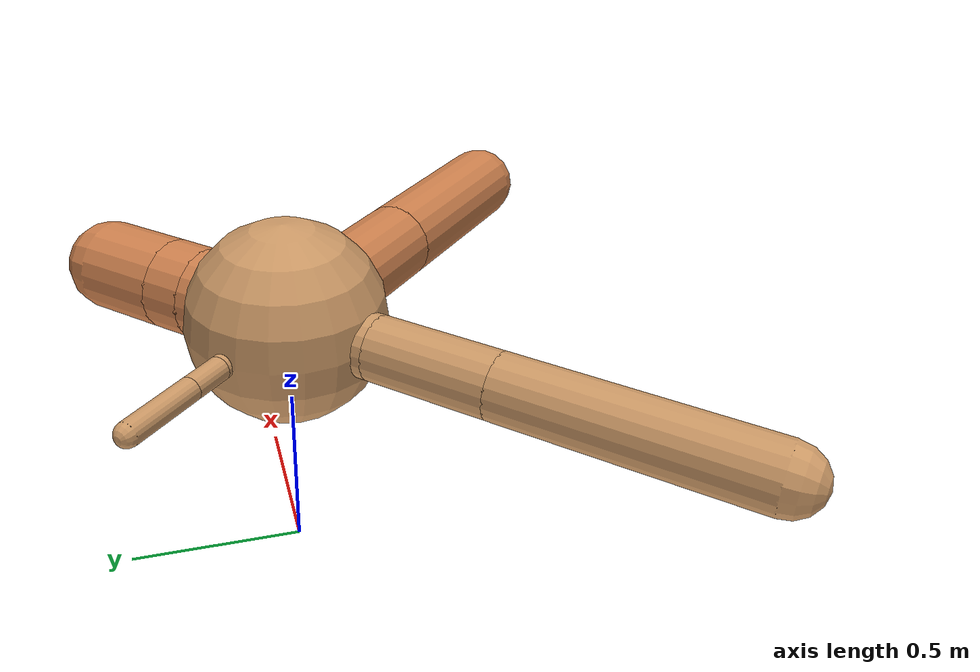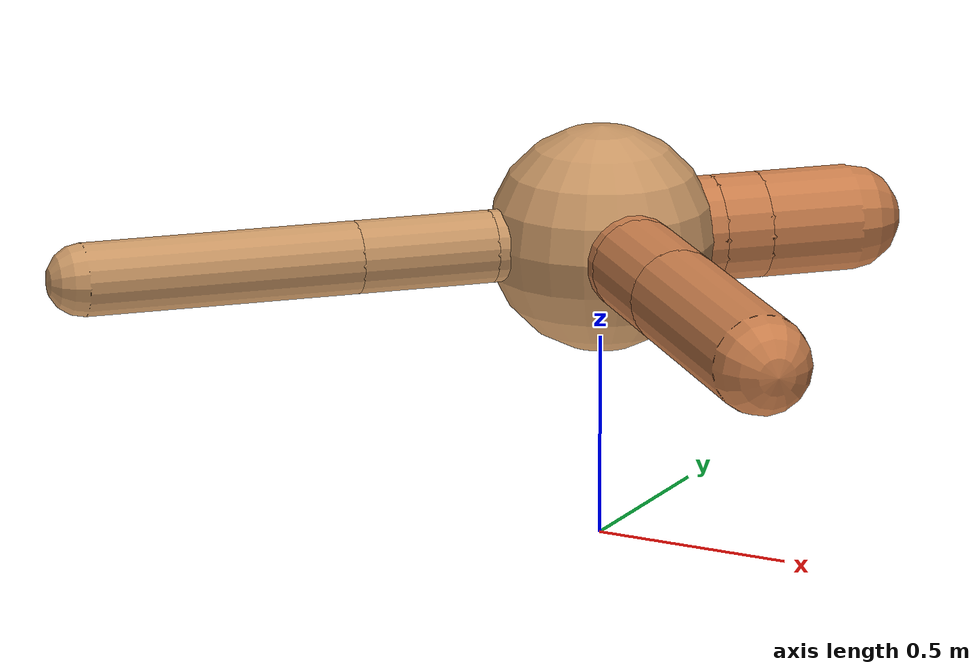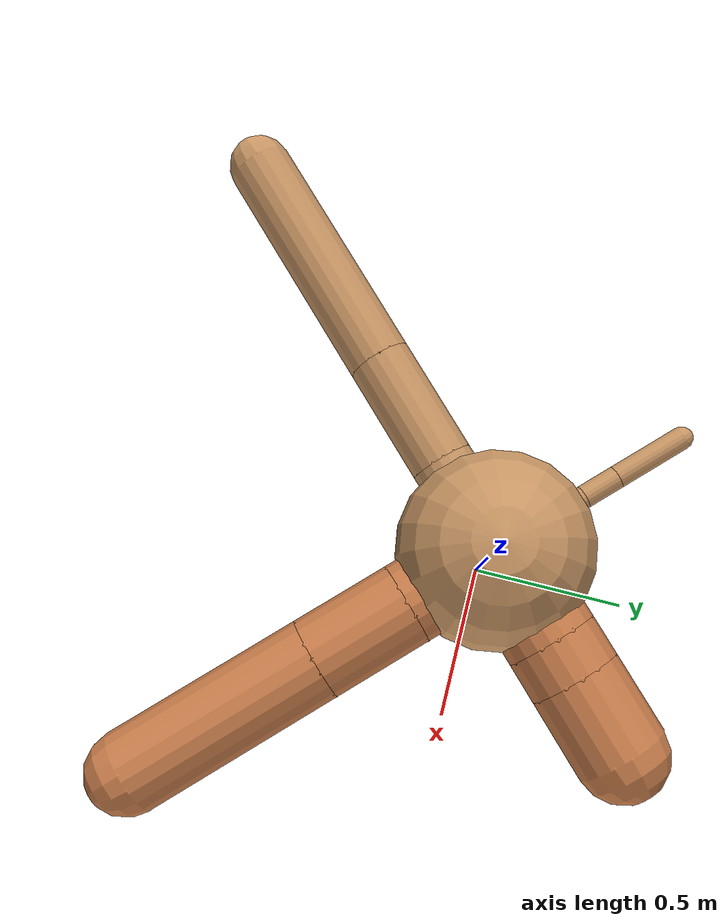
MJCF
<?xml version="1.0" ?>
<mujoco model="ant">

	<compiler angle="degree" coordinate="local" inertiafromgeom="true"/>

	<option integrator="RK4" timestep="0.01"/>

	<custom>

		<numeric data="0.0 0.0 0.55 1.0 0.0 0.0 0.0 0.0 1.0 0.0 -1.0 0.0 -1.0 0.0 1.0" name="init_qpos"/>

	</custom>

	<default>

		<joint armature="1" damping="1" limited="true"/>

		<geom conaffinity="0" condim="3" density="5.0" friction="1.5 0.1 0.1" margin="0.01" rgba="0.8 0.6 0.4 1"/>

	</default>

	<worldbody>

		<body name="torso" pos="0 0 0.75">

			<geom name="torso_geom" pos="0 0 0" size="0.276778733710317" type="sphere"/>

			<!--joint armature="0" damping="0" limited="false" margin="0.01" name="root" pos="0 0 0" type="free"/-->

			<body name="front_left_leg" pos="0 0 0">

				<geom fromto="0 0 0 0.2 0.2 0" name="aux_1_geom" size="0.12998777075475867" type="capsule" rgba=".8 .5 .3 1"/>

				<body name="aux_1" pos="0.2 0.2 0">

					<joint axis="0 0 1" name="hip_1" pos="0.0 0.0 0.0" range="-40 40" type="hinge"/>

					<geom fromto="0 0 0 0.08247007376221803 0.08247007376221803 0" name="left_leg_geom" size="0.12998777075475867" type="capsule" rgba=".8 .5 .3 1"/>

					<body pos="0.08247007376221803 0.08247007376221803 0" name="front_left_foot">

						<joint axis="-1 1 0" name="ankle_1" pos="0.0 0.0 0.0" range="30 100" type="hinge"/>

						<geom fromto="0 0 0 0.16494014752443606 0.16494014752443606 0" name="left_ankle_geom" size="0.12998777075475867" type="capsule" rgba=".8 .5 .3 1"/>

					</body>

				</body>

			</body>

			<body name="front_right_leg" pos="0 0 0">

				<geom fromto="0 0 0 -0.2 0.2 0" name="aux_2_geom" size="0.03244631256386077" type="capsule"/>

				<body name="aux_2" pos="-0.2 0.2 0">

					<joint axis="0 0 1" name="hip_2" pos="0.0 0.0 0.0" range="-40 40" type="hinge"/>

					<geom fromto="0 0 0 -0.07557268384165075 0.07557268384165075 0" name="right_leg_geom" size="0.03244631256386077" type="capsule"/>

					<body pos="-0.07557268384165075 0.07557268384165075 0" name="front_right_foot">

						<joint axis="1 1 0" name="ankle_2" pos="0.0 0.0 0.0" range="-100 -30" type="hinge"/>

						<geom fromto="0 0 0 -0.1511453676833015 0.1511453676833015 0" name="right_ankle_geom" size="0.03244631256386077" type="capsule"/>

					</body>

				</body>

			</body>

			<body name="left_back_leg" pos="0 0 0">

				<geom fromto="0 0 0 -0.2 -0.2 0" name="aux_3_geom" size="0.08841734447006762" type="capsule"/>

				<body name="aux_3" pos="-0.2 -0.2 0">

					<joint axis="0 0 1" name="hip_3" pos="0.0 0.0 0.0" range="-40 40" type="hinge"/>

					<geom fromto="0 0 0 -0.2373998228809236 -0.2373998228809236 0" name="back_leg_geom" size="0.08841734447006762" type="capsule"/>

					<body pos="-0.2373998228809236 -0.2373998228809236 0" name="left_back_foot">

						<joint axis="-1 1 0" name="ankle_3" pos="0.0 0.0 0.0" range="-100 -30" type="hinge"/>

						<geom fromto="0 0 0 -0.4747996457618472 -0.4747996457618472 0" name="third_ankle_geom" size="0.08841734447006762" type="capsule"/>

					</body>

				</body>

			</body>

			<body name="right_back_leg" pos="0 0 0">

				<geom fromto="0 0 0 0.2 -0.2 0" name="aux_4_geom" size="0.11708694105058039" type="capsule" rgba=".8 .5 .3 1"/>

				<body name="aux_4" pos="0.2 -0.2 0">

					<joint axis="0 0 1" name="hip_4" pos="0.0 0.0 0.0" range="-40 40" type="hinge"/>

					<geom fromto="0 0 0 0.2018601280101839 -0.2018601280101839 0" name="rightback_leg_geom" size="0.11708694105058039" type="capsule" rgba=".8 .5 .3 1"/>

					<body pos="0.2018601280101839 -0.2018601280101839 0" name="right_back_foot">

						<joint axis="1 1 0" name="ankle_4" pos="0.0 0.0 0.0" range="30 100" type="hinge"/>

						<geom fromto="0 0 0 0.4037202560203678 -0.4037202560203678 0" name="fourth_ankle_geom" size="0.11708694105058039" type="capsule" rgba=".8 .5 .3 1"/>

					</body>

				</body>

			</body>

		</body>

	</worldbody>

	<actuator>

		<motor ctrllimited="true" ctrlrange="-1.0 1.0" joint="hip_4" gear="150"/>

		<motor ctrllimited="true" ctrlrange="-1.0 1.0" joint="ankle_4" gear="150"/>

		<motor ctrllimited="true" ctrlrange="-1.0 1.0" joint="hip_1" gear="150"/>

		<motor ctrllimited="true" ctrlrange="-1.0 1.0" joint="ankle_1" gear="150"/>

		<motor ctrllimited="true" ctrlrange="-1.0 1.0" joint="hip_2" gear="150"/>

		<motor ctrllimited="true" ctrlrange="-1.0 1.0" joint="ankle_2" gear="150"/>

		<motor ctrllimited="true" ctrlrange="-1.0 1.0" joint="hip_3" gear="150"/>

		<motor ctrllimited="true" ctrlrange="-1.0 1.0" joint="ankle_3" gear="150"/>

	</actuator>

</mujoco>
